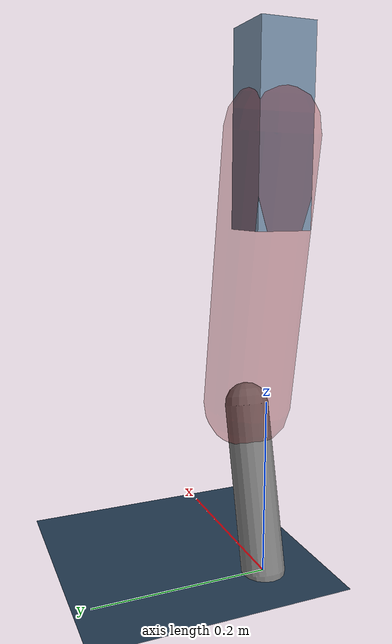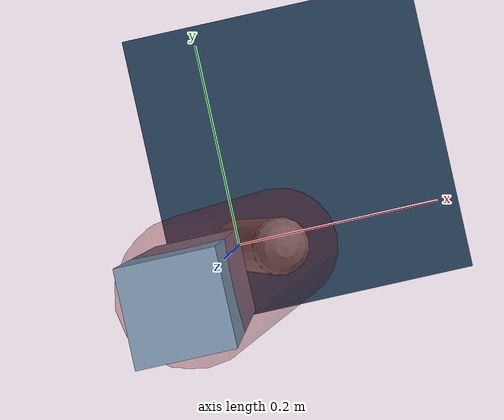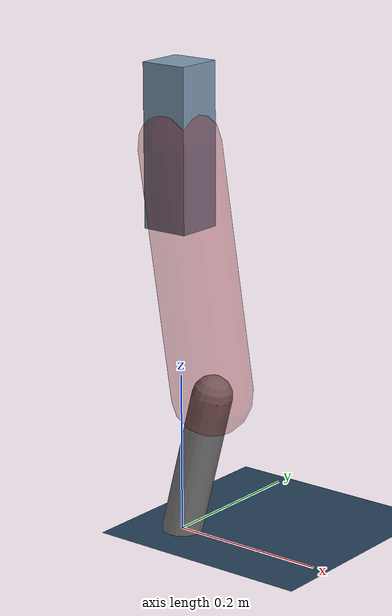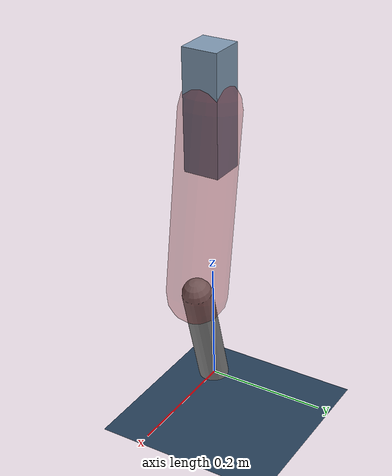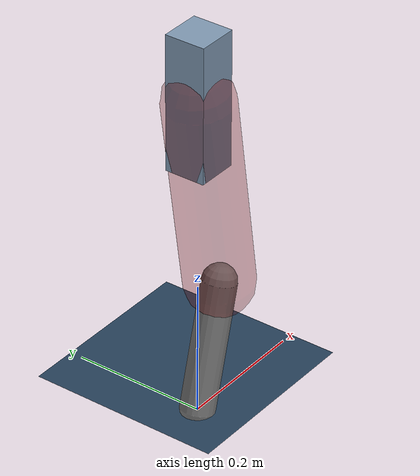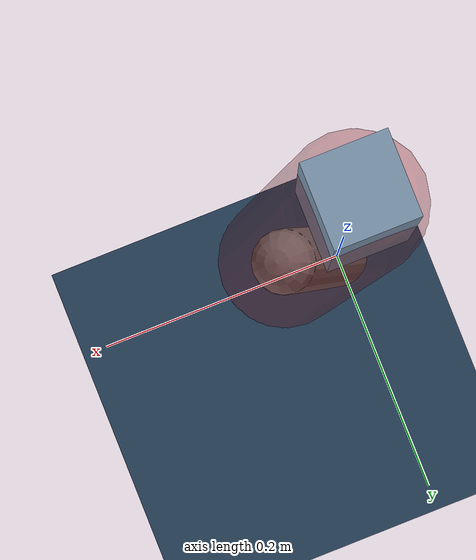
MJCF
<mujoco model="Hopper2D">
	<compiler inertiafromgeom="true" angle="radian" />
	<option timestep="0.001" integrator="implicit" cone="elliptic" solver="Newton" tolerance="1e-10" />

	<default>
		<geom contype="1" conaffinity="1" condim="3" friction="2 0.005 0.0001" solref="0.005 1" />
		<joint limited="true" damping="0.1" />
	</default>

	<asset>
		<texture name="skybox" type="skybox" builtin="gradient" rgb1=".4 .6 .8" rgb2="0 0 0" width="800" height="800" />
		<texture name="grid" type="2d" builtin="checker" rgb1=".1 .2 .3" rgb2=".2 .3 .4" width="300" height="300" mark="edge" markrgb=".2 .3 .4" />
		<material name="ground" texture="grid" texrepeat="1 1" texuniform="true" reflectance="0.1" />
		<material name="leg" rgba="0.5 0.6 0.7 1" />
	</asset>

	<worldbody>

		<geom name="floor" type="plane" size="5 5 0.25" material="ground" />

		<light directional="false" diffuse="0.8 0.8 0.8" specular="0.3 0.3 0.3" pos="0 0 2" dir="0 0 -1" />
		<light mode="targetbodycom" target="base" directional="false" diffuse="0.8 0.8 0.8" specular="0.3 0.3 0.3" pos="0 0 2" dir="0 0 -1" />

		<camera name="fixed" pos="0 -2 1" xyaxes="1 0 0 0 0 1" />
		<camera name="tracking" mode="trackcom" pos="0 -3 1" />

		<body name="root" pos="0 0 0.4859443032685722">
			<joint name="slide_x" type="slide" axis="1 0 0" range="-100 100" />
			<joint name="slide_z" type="slide" axis="0 0 1" range="0 10" />

			<body name="base" pos="0 0 0">
				<geom name="torso" type="box" size="0.03 0.03 0.1" mass="2.229" material="leg" />

				<body name="link1" pos="0 0 0" euler="0 1.4123689996020015 0">
					<joint type="hinge" axis="0 -1 0" pos="0 0 0" name="hinge1" limited="true" range="-3.14 3.14" stiffness="0" damping="0.1" />
					<geom name="thigh" type="capsule" fromto="0 0 0 0.3052060738095712 0 0" size="0.05" rgba="0.5 0 0 0.3" mass="1.0028563992858421" />

					<body name="link2" pos="0.3052060738095712 0 0" euler="0 0.41363388394745515 0">
						<joint type="hinge" axis="0 -1 0" pos="0 0 0" name="hinge2" limited="true" range="-3.14 3.14" stiffness="0" damping="0.1" />
						<geom name="shank" type="capsule" fromto="0 0 0 0.19073822945900096 0 0" size="0.025" mass="0.3930644065131009" />

					</body>
				</body>
			</body>
		</body>
	</worldbody>

	<actuator>
		<motor name="torque1" joint="hinge1" ctrlrange="-65.32385212783454 65.32385212783454" ctrllimited="true" gear="1" />
		<motor name="torque2" joint="hinge2" ctrlrange="-74.25765558341598 74.25765558341598" ctrllimited="true" gear="1" />
	</actuator>
</mujoco>
